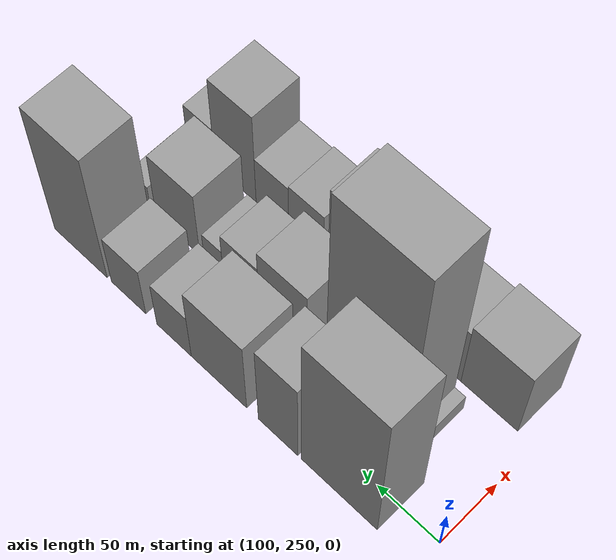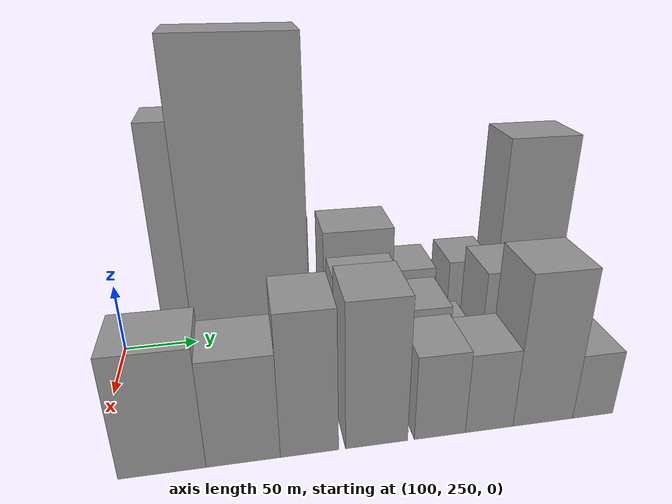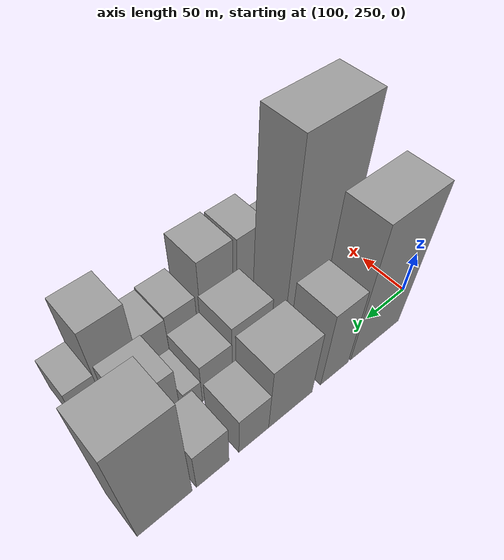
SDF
<sdf version="1.6">
 <world name="default">
  <model name="building_25">
   <static>1</static>
   <pose>100.0000 312.3558 0 0.000000 0.000000 0.000000</pose>
   <link name="link">
    <pose>0 0 82.50 0 0 0</pose>
    <collision name="collision"><geometry><box><size>40.0000 62.3855 165.0000</size></box></geometry></collision>
    <visual name="visual">
     <cast_shadows>0</cast_shadows>
     <geometry><box><size>40.0000 62.3855 165.0000</size></box></geometry>
     <material>
      <script>
       <uri>model://grey_wall/materials/scripts</uri>
       <uri>model://grey_wall/materials/textures</uri>
       <name>vrc/grey_wall</name>
      </script>
     </material>
    </visual>
   </link>
  </model>
  <model name="building_26">
   <static>1</static>
   <pose>100.0000 363.2936 0 0.000000 0.000000 0.000000</pose>
   <link name="link">
    <pose>0 0 49.50 0 0 0</pose>
    <collision name="collision"><geometry><box><size>40.0000 33.4901 99.0000</size></box></geometry></collision>
    <visual name="visual">
     <cast_shadows>0</cast_shadows>
     <geometry><box><size>40.0000 33.4901 99.0000</size></box></geometry>
     <material>
      <script>
       <uri>model://grey_wall/materials/scripts</uri>
       <uri>model://grey_wall/materials/textures</uri>
       <name>vrc/grey_wall</name>
      </script>
     </material>
    </visual>
   </link>
  </model>
  <model name="building_27">
   <static>1</static>
   <pose>100.0000 414.3053 0 0.000000 0.000000 0.000000</pose>
   <link name="link">
    <pose>0 0 43.50 0 0 0</pose>
    <collision name="collision"><geometry><box><size>40.0000 48.5332 87.0000</size></box></geometry></collision>
    <visual name="visual">
     <cast_shadows>0</cast_shadows>
     <geometry><box><size>40.0000 48.5332 87.0000</size></box></geometry>
     <material>
      <script>
       <uri>model://grey_wall/materials/scripts</uri>
       <uri>model://grey_wall/materials/textures</uri>
       <name>vrc/grey_wall</name>
      </script>
     </material>
    </visual>
   </link>
  </model>
  <model name="building_28">
   <static>1</static>
   <pose>100.0000 454.1151 0 0.000000 0.000000 0.000000</pose>
   <link name="link">
    <pose>0 0 27.00 0 0 0</pose>
    <collision name="collision"><geometry><box><size>40.0000 31.0865 54.0000</size></box></geometry></collision>
    <visual name="visual">
     <cast_shadows>0</cast_shadows>
     <geometry><box><size>40.0000 31.0865 54.0000</size></box></geometry>
     <material>
      <script>
       <uri>model://grey_wall/materials/scripts</uri>
       <uri>model://grey_wall/materials/textures</uri>
       <name>vrc/grey_wall</name>
      </script>
     </material>
    </visual>
   </link>
  </model>
  <model name="building_29">
   <static>1</static>
   <pose>100.0000 495.5309 0 0.000000 0.000000 0.000000</pose>
   <link name="link">
    <pose>0 0 28.50 0 0 0</pose>
    <collision name="collision"><geometry><box><size>40.0000 31.7450 57.0000</size></box></geometry></collision>
    <visual name="visual">
     <cast_shadows>0</cast_shadows>
     <geometry><box><size>40.0000 31.7450 57.0000</size></box></geometry>
     <material>
      <script>
       <uri>model://grey_wall/materials/scripts</uri>
       <uri>model://grey_wall/materials/textures</uri>
       <name>vrc/grey_wall</name>
      </script>
     </material>
    </visual>
   </link>
  </model>
  <model name="building_30">
   <static>1</static>
   <pose>100.0000 540.2542 0 0.000000 0.000000 0.000000</pose>
   <link name="link">
    <pose>0 0 72.00 0 0 0</pose>
    <collision name="collision"><geometry><box><size>40.0000 49.7016 144.0000</size></box></geometry></collision>
    <visual name="visual">
     <cast_shadows>0</cast_shadows>
     <geometry><box><size>40.0000 49.7016 144.0000</size></box></geometry>
     <material>
      <script>
       <uri>model://grey_wall/materials/scripts</uri>
       <uri>model://grey_wall/materials/textures</uri>
       <name>vrc/grey_wall</name>
      </script>
     </material>
    </visual>
   </link>
  </model>
  <model name="building_52">
   <static>1</static>
   <pose>152.0000 301.0048 0 0.000000 0.000000 0.000000</pose>
   <link name="link">
    <pose>0 0 9.00 0 0 0</pose>
    <collision name="collision"><geometry><box><size>40.0000 8.9475 18.0000</size></box></geometry></collision>
    <visual name="visual">
     <cast_shadows>0</cast_shadows>
     <geometry><box><size>40.0000 8.9475 18.0000</size></box></geometry>
     <material>
      <script>
       <uri>model://grey_wall/materials/scripts</uri>
       <uri>model://grey_wall/materials/textures</uri>
       <name>vrc/grey_wall</name>
      </script>
     </material>
    </visual>
   </link>
  </model>
  <model name="building_53">
   <static>1</static>
   <pose>152.0000 339.7961 0 0.000000 0.000000 0.000000</pose>
   <link name="link">
    <pose>0 0 109.50 0 0 0</pose>
    <collision name="collision"><geometry><box><size>40.0000 68.6351 219.0000</size></box></geometry></collision>
    <visual name="visual">
     <cast_shadows>0</cast_shadows>
     <geometry><box><size>40.0000 68.6351 219.0000</size></box></geometry>
     <material>
      <script>
       <uri>model://grey_wall/materials/scripts</uri>
       <uri>model://grey_wall/materials/textures</uri>
       <name>vrc/grey_wall</name>
      </script>
     </material>
    </visual>
   </link>
  </model>
  <model name="building_54">
   <static>1</static>
   <pose>152.0000 380.0673 0 0.000000 0.000000 0.000000</pose>
   <link name="link">
    <pose>0 0 13.50 0 0 0</pose>
    <collision name="collision"><geometry><box><size>40.0000 11.9073 27.0000</size></box></geometry></collision>
    <visual name="visual">
     <cast_shadows>0</cast_shadows>
     <geometry><box><size>40.0000 11.9073 27.0000</size></box></geometry>
     <material>
      <script>
       <uri>model://grey_wall/materials/scripts</uri>
       <uri>model://grey_wall/materials/textures</uri>
       <name>vrc/grey_wall</name>
      </script>
     </material>
    </visual>
   </link>
  </model>
  <model name="building_55">
   <static>1</static>
   <pose>152.0000 410.9445 0 0.000000 0.000000 0.000000</pose>
   <link name="link">
    <pose>0 0 37.50 0 0 0</pose>
    <collision name="collision"><geometry><box><size>40.0000 41.8471 75.0000</size></box></geometry></collision>
    <visual name="visual">
     <cast_shadows>0</cast_shadows>
     <geometry><box><size>40.0000 41.8471 75.0000</size></box></geometry>
     <material>
      <script>
       <uri>model://grey_wall/materials/scripts</uri>
       <uri>model://grey_wall/materials/textures</uri>
       <name>vrc/grey_wall</name>
      </script>
     </material>
    </visual>
   </link>
  </model>
  <model name="building_56">
   <static>1</static>
   <pose>152.0000 447.8825 0 0.000000 0.000000 0.000000</pose>
   <link name="link">
    <pose>0 0 27.00 0 0 0</pose>
    <collision name="collision"><geometry><box><size>40.0000 32.0290 54.0000</size></box></geometry></collision>
    <visual name="visual">
     <cast_shadows>0</cast_shadows>
     <geometry><box><size>40.0000 32.0290 54.0000</size></box></geometry>
     <material>
      <script>
       <uri>model://grey_wall/materials/scripts</uri>
       <uri>model://grey_wall/materials/textures</uri>
       <name>vrc/grey_wall</name>
      </script>
     </material>
    </visual>
   </link>
  </model>
  <model name="building_57">
   <static>1</static>
   <pose>152.0000 472.6197 0 0.000000 0.000000 0.000000</pose>
   <link name="link">
    <pose>0 0 16.50 0 0 0</pose>
    <collision name="collision"><geometry><box><size>40.0000 17.4455 33.0000</size></box></geometry></collision>
    <visual name="visual">
     <cast_shadows>0</cast_shadows>
     <geometry><box><size>40.0000 17.4455 33.0000</size></box></geometry>
     <material>
      <script>
       <uri>model://grey_wall/materials/scripts</uri>
       <uri>model://grey_wall/materials/textures</uri>
       <name>vrc/grey_wall</name>
      </script>
     </material>
    </visual>
   </link>
  </model>
  <model name="building_58">
   <static>1</static>
   <pose>152.0000 505.5870 0 0.000000 0.000000 0.000000</pose>
   <link name="link">
    <pose>0 0 37.50 0 0 0</pose>
    <collision name="collision"><geometry><box><size>40.0000 40.4890 75.0000</size></box></geometry></collision>
    <visual name="visual">
     <cast_shadows>0</cast_shadows>
     <geometry><box><size>40.0000 40.4890 75.0000</size></box></geometry>
     <material>
      <script>
       <uri>model://grey_wall/materials/scripts</uri>
       <uri>model://grey_wall/materials/textures</uri>
       <name>vrc/grey_wall</name>
      </script>
     </material>
    </visual>
   </link>
  </model>
  <model name="building_59">
   <static>1</static>
   <pose>152.0000 539.6128 0 0.000000 0.000000 0.000000</pose>
   <link name="link">
    <pose>0 0 15.00 0 0 0</pose>
    <collision name="collision"><geometry><box><size>40.0000 17.5625 30.0000</size></box></geometry></collision>
    <visual name="visual">
     <cast_shadows>0</cast_shadows>
     <geometry><box><size>40.0000 17.5625 30.0000</size></box></geometry>
     <material>
      <script>
       <uri>model://grey_wall/materials/scripts</uri>
       <uri>model://grey_wall/materials/textures</uri>
       <name>vrc/grey_wall</name>
      </script>
     </material>
    </visual>
   </link>
  </model>
  <model name="building_81">
   <static>1</static>
   <pose>204.0000 286.3610 0 0.000000 0.000000 0.000000</pose>
   <link name="link">
    <pose>0 0 39.00 0 0 0</pose>
    <collision name="collision"><geometry><box><size>40.0000 46.1131 78.0000</size></box></geometry></collision>
    <visual name="visual">
     <cast_shadows>0</cast_shadows>
     <geometry><box><size>40.0000 46.1131 78.0000</size></box></geometry>
     <material>
      <script>
       <uri>model://grey_wall/materials/scripts</uri>
       <uri>model://grey_wall/materials/textures</uri>
       <name>vrc/grey_wall</name>
      </script>
     </material>
    </visual>
   </link>
  </model>
  <model name="building_82">
   <static>1</static>
   <pose>204.0000 329.6056 0 0.000000 0.000000 0.000000</pose>
   <link name="link">
    <pose>0 0 34.50 0 0 0</pose>
    <collision name="collision"><geometry><box><size>40.0000 40.3760 69.0000</size></box></geometry></collision>
    <visual name="visual">
     <cast_shadows>0</cast_shadows>
     <geometry><box><size>40.0000 40.3760 69.0000</size></box></geometry>
     <material>
      <script>
       <uri>model://grey_wall/materials/scripts</uri>
       <uri>model://grey_wall/materials/textures</uri>
       <name>vrc/grey_wall</name>
      </script>
     </material>
    </visual>
   </link>
  </model>
  <model name="building_83">
   <static>1</static>
   <pose>204.0000 366.1708 0 0.000000 0.000000 0.000000</pose>
   <link name="link">
    <pose>0 0 46.50 0 0 0</pose>
    <collision name="collision"><geometry><box><size>40.0000 32.7544 93.0000</size></box></geometry></collision>
    <visual name="visual">
     <cast_shadows>0</cast_shadows>
     <geometry><box><size>40.0000 32.7544 93.0000</size></box></geometry>
     <material>
      <script>
       <uri>model://grey_wall/materials/scripts</uri>
       <uri>model://grey_wall/materials/textures</uri>
       <name>vrc/grey_wall</name>
      </script>
     </material>
    </visual>
   </link>
  </model>
  <model name="building_84">
   <static>1</static>
   <pose>204.0000 404.6485 0 0.000000 0.000000 0.000000</pose>
   <link name="link">
    <pose>0 0 48.00 0 0 0</pose>
    <collision name="collision"><geometry><box><size>40.0000 36.2011 96.0000</size></box></geometry></collision>
    <visual name="visual">
     <cast_shadows>0</cast_shadows>
     <geometry><box><size>40.0000 36.2011 96.0000</size></box></geometry>
     <material>
      <script>
       <uri>model://grey_wall/materials/scripts</uri>
       <uri>model://grey_wall/materials/textures</uri>
       <name>vrc/grey_wall</name>
      </script>
     </material>
    </visual>
   </link>
  </model>
  <model name="building_85">
   <static>1</static>
   <pose>204.0000 442.1644 0 0.000000 0.000000 0.000000</pose>
   <link name="link">
    <pose>0 0 28.50 0 0 0</pose>
    <collision name="collision"><geometry><box><size>40.0000 30.8306 57.0000</size></box></geometry></collision>
    <visual name="visual">
     <cast_shadows>0</cast_shadows>
     <geometry><box><size>40.0000 30.8306 57.0000</size></box></geometry>
     <material>
      <script>
       <uri>model://grey_wall/materials/scripts</uri>
       <uri>model://grey_wall/materials/textures</uri>
       <name>vrc/grey_wall</name>
      </script>
     </material>
    </visual>
   </link>
  </model>
  <model name="building_86">
   <static>1</static>
   <pose>204.0000 472.3916 0 0.000000 0.000000 0.000000</pose>
   <link name="link">
    <pose>0 0 27.00 0 0 0</pose>
    <collision name="collision"><geometry><box><size>40.0000 29.6239 54.0000</size></box></geometry></collision>
    <visual name="visual">
     <cast_shadows>0</cast_shadows>
     <geometry><box><size>40.0000 29.6239 54.0000</size></box></geometry>
     <material>
      <script>
       <uri>model://grey_wall/materials/scripts</uri>
       <uri>model://grey_wall/materials/textures</uri>
       <name>vrc/grey_wall</name>
      </script>
     </material>
    </visual>
   </link>
  </model>
  <model name="building_87">
   <static>1</static>
   <pose>204.0000 506.2944 0 0.000000 0.000000 0.000000</pose>
   <link name="link">
    <pose>0 0 51.00 0 0 0</pose>
    <collision name="collision"><geometry><box><size>40.0000 38.1817 102.0000</size></box></geometry></collision>
    <visual name="visual">
     <cast_shadows>0</cast_shadows>
     <geometry><box><size>40.0000 38.1817 102.0000</size></box></geometry>
     <material>
      <script>
       <uri>model://grey_wall/materials/scripts</uri>
       <uri>model://grey_wall/materials/textures</uri>
       <name>vrc/grey_wall</name>
      </script>
     </material>
    </visual>
   </link>
  </model>
  <model name="building_88">
   <static>1</static>
   <pose>204.0000 538.5741 0 0.000000 0.000000 0.000000</pose>
   <link name="link">
    <pose>0 0 22.50 0 0 0</pose>
    <collision name="collision"><geometry><box><size>40.0000 26.3776 45.0000</size></box></geometry></collision>
    <visual name="visual">
     <cast_shadows>0</cast_shadows>
     <geometry><box><size>40.0000 26.3776 45.0000</size></box></geometry>
     <material>
      <script>
       <uri>model://grey_wall/materials/scripts</uri>
       <uri>model://grey_wall/materials/textures</uri>
       <name>vrc/grey_wall</name>
      </script>
     </material>
    </visual>
   </link>
  </model>
 </world>
</sdf>
